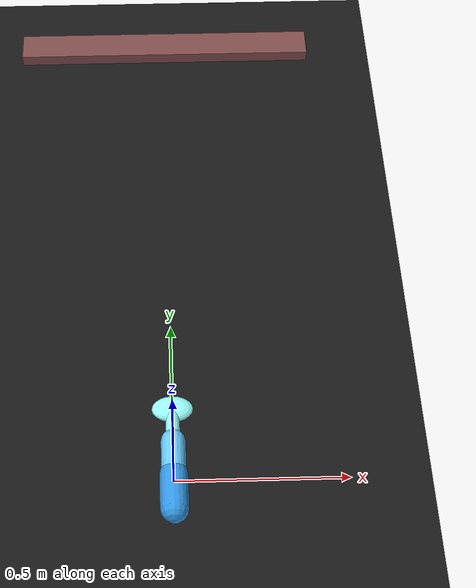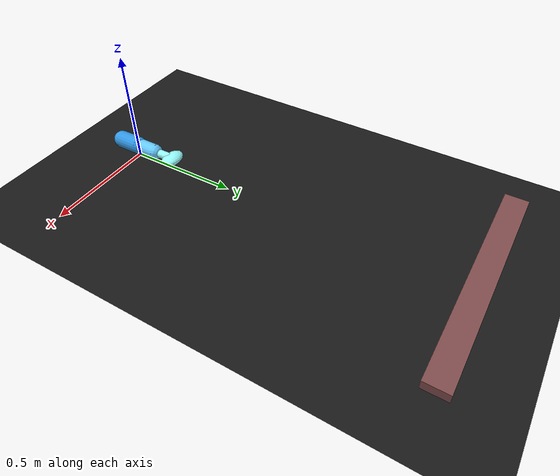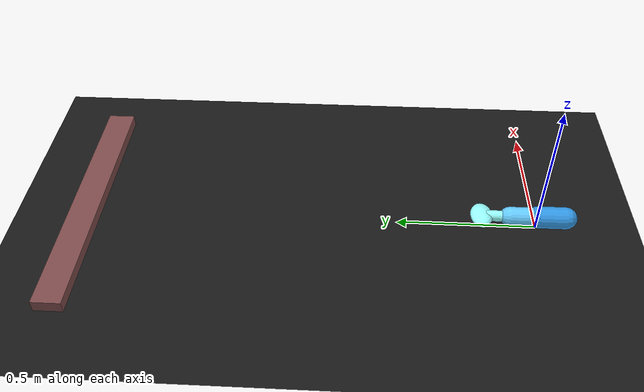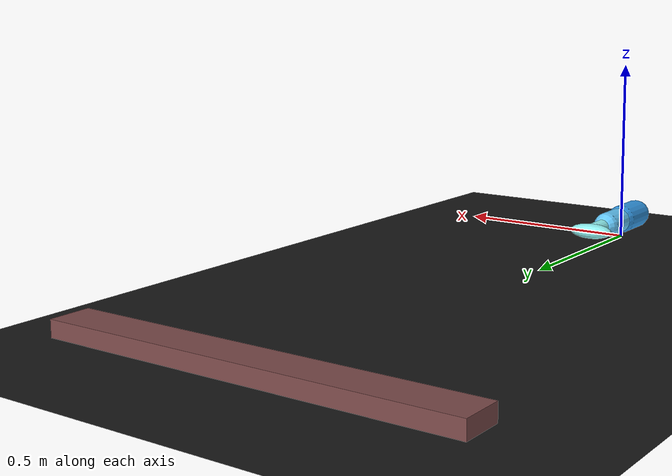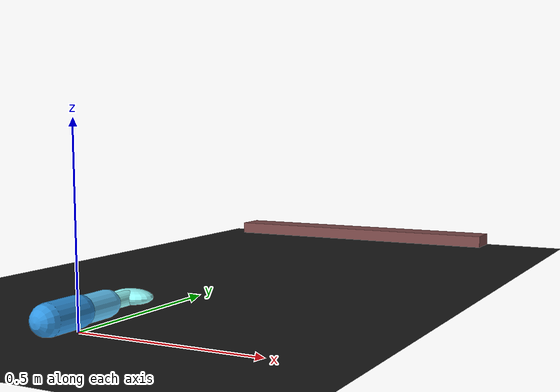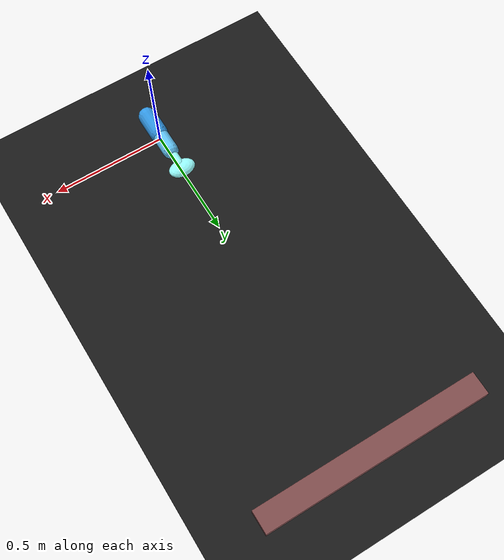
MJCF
<mujoco model="Fish2D_Swimmer_Obstacle">

    <compiler angle="degree" inertiafromgeom="true"/>
    <option timestep="0.01" gravity="0 0 0" integrator="RK4"/>

    <default>
        <joint damping="0.05" stiffness="0" armature="0.01"/>
        <motor ctrlrange="-1 1" ctrllimited="true"/>
        <geom solref="0.001 1" solimp="0.9 0.95 0.001"/>
    </default>

    <asset>
        <material name="head"    rgba="0.2 0.6 0.9 1"/>
        <material name="body"    rgba="0.4 0.8 1.0 1"/>
        <material name="tail"    rgba="0.6 1.0 1.0 1"/>
        <material name="obstacle" rgba="0.5 0.3 0.3 1"/>
    </asset>

    <worldbody>
        <geom type="plane" size="5 5 0.1" material="head" rgba="0.1 0.1 0.1 1" pos="0 0 0"/>

        <!-- Static rectangular obstacle above the tail. -->
        <body name="obstacle" pos="0 1.625 0.05">
            <!-- A jointless static body. -->
            <geom name="obstacle_geom" type="box"
                  size="0.50 0.05 0.02"
                  material="obstacle"
                  density="10000"/>
        </body>

        <!-- Fish head toward -y and tail toward +y. -->
        <body name="root" pos="0 0 0.05">
            <joint name="free_xy" type="free"/>

            <!-- Head facing -y. -->
            <geom name="head_geom" type="capsule"
                  fromto="0 0 0  0 -0.1 0"
                  size="0.04"
                  material="head"
                  density="500"/>

            <!-- Mid-body behind the head toward +y. -->
            <body name="body" pos="0 0 0">
                <joint name="joint1" type="hinge" axis="0 0 1" range="-45 45"/>

                <geom name="body_geom" type="capsule"
                      fromto="0 0 0  0 0.1 0"
                      size="0.035"
                      material="body"
                      density="500"/>

                <!-- Tail behind the body toward +y. -->
                <body name="tail" pos="0 0.1 0">
                    <joint name="joint2" type="hinge" axis="0 0 1" range="-60 60"/>

                    <!-- Slender tail peduncle. -->
                    <geom name="tail_stem" type="capsule"
                          fromto="0 0 0  0 0.08 0"
                          size="0.02"
                          material="tail"
                          density="500"/>

                    <!-- Wide propulsive tail fin. -->
                    <geom name="tail_fin" type="ellipsoid"
                          size="0.06 0.04 0.02"
                          pos="0 0.1 0"
                          material="tail"
                          density="500"/>
                </body>
            </body>
        </body>
        <light directional="true" diffuse="0.9 0.9 0.9" pos="0 0 5" dir="0 0 -1"/>
    </worldbody>

    <actuator>
        <motor joint="joint1" gear="0.15"/>
        <motor joint="joint2" gear="0.2"/>
    </actuator>

</mujoco>
